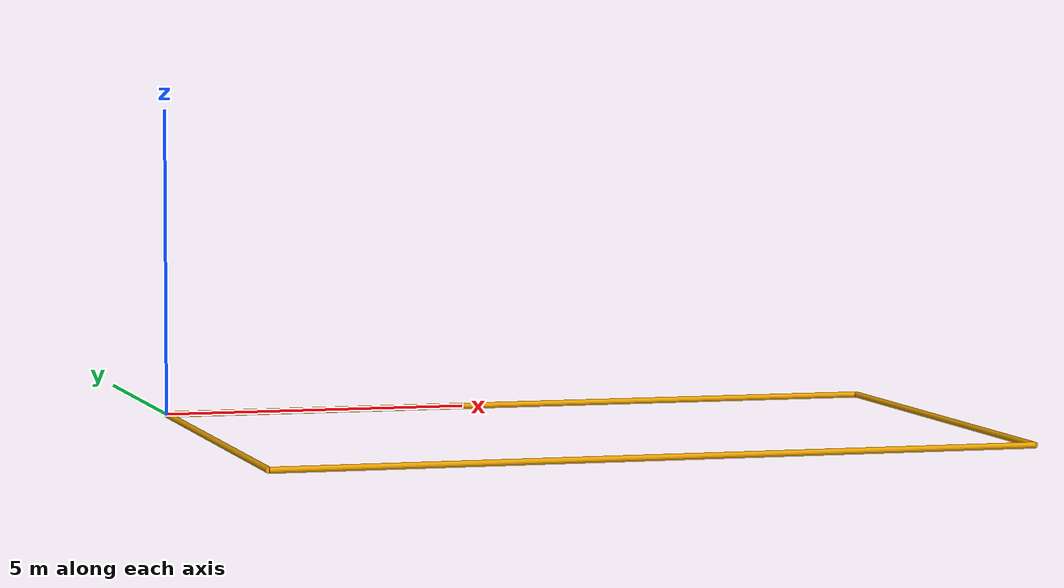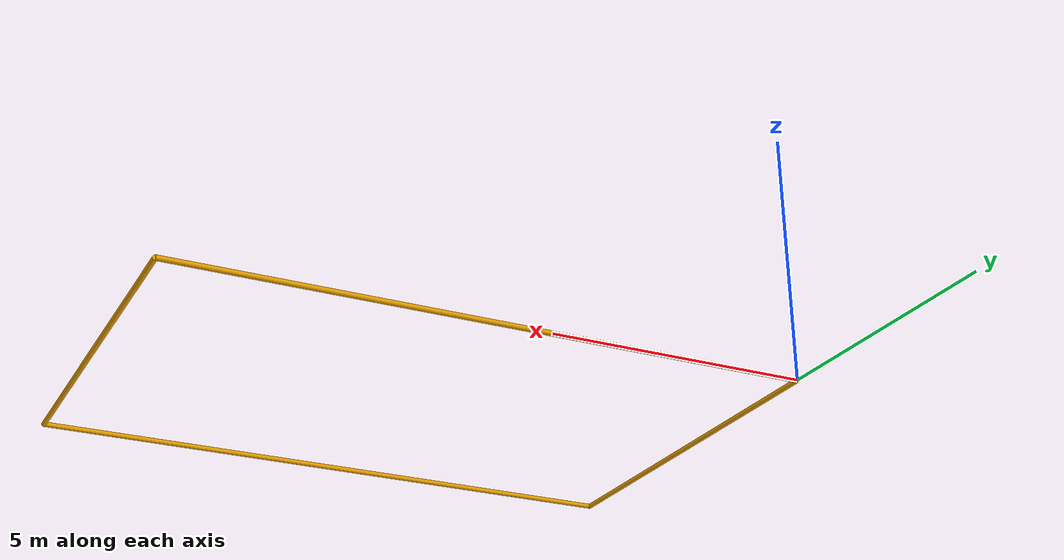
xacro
<?xml version="1.0" encoding="utf-8"?>
<!-- RoboMaster 2024 哨兵7号 导航框架 -->
<robot name="rm_2024_SENTRY_7_nav"
  xmlns:xacro="http://ros.org/wiki/xacro">
  <xacro:property name="line_width" value="0.05" />
  <link name="map" > <!-- 地图可视化描述 -->
    <visual>
      <!-- 场地上边缘 -->
      <origin xyz="6 0 0" rpy="${pi/2} 0 ${pi/2}" />
      <geometry>
        <cylinder length="12" radius="${line_width}" />
      </geometry>
    </visual>
    <visual>
      <!-- 场地下边缘 -->
      <origin xyz="6 -8 0" rpy="${pi/2} 0 ${pi/2}" />
      <geometry>
        <cylinder length="12" radius="${line_width}" />
      </geometry>
    </visual>
    <visual>
      <!-- 场地左边缘 -->
      <origin xyz="0 -4 0"  rpy="${pi/2} 0 0"  />
      <geometry>
        <cylinder length="8" radius="${line_width}" />
      </geometry>
    </visual>
    <visual>
      <!-- 场地右边缘 -->
      <origin xyz="12 -4 0" rpy="${pi/2} 0 0"  />
      <geometry>
        <cylinder length="8" radius="${line_width}" />
      </geometry>
    </visual>
    <visual>
      <!-- 场地右边缘 -->
      <origin xyz="12 -4 0" rpy="${pi/2} 0 0"  />
      <geometry>
        <cylinder length="8" radius="${line_width}" />
      </geometry>
    </visual>
  </link>
  <link name="foot_init" />
  <link name="lidar_init" />
  <link name="lidar_now" />
  <link name="robot_center" />
  <link name="livox_frame" />
  <link name="robot_foot" />

  <joint name="map_foot_init_joint" type="fixed">
    <origin xyz="0 0 0" rpy="0 0 ${48/180*pi}" />

    <parent link="map" />
    <child link="foot_init" />
  </joint>

  <joint name="foot_init_lidar_init_joint" type="fixed">
    <origin xyz="0.11 0.128 0.568" rpy="${180/180*pi} 0 0" />
    <parent link="foot_init" />
    <child link="lidar_init" />
  </joint>

  <joint name="lidar_init_lidar_now_joint" type="floating">
    <parent link="lidar_init" />
    <child link="lidar_now" />
  </joint>

  <joint name="lidar_now_gimbal_link_joint" type="fixed">
    <origin xyz="-0.11 0.128 ${0.568-0.432}" rpy="-${180/180*pi} 0 0" />
    <parent link="lidar_now" />
    <child link="robot_center" />
  </joint>

  <joint name="foot_init_joint" type="fixed">
    <origin xyz="0 0 -0.432" rpy="0 0 0" />
    <parent link="robot_center" />
    <child link="robot_foot" />
  </joint>

  <joint name="livox_joint" type="fixed">
    <origin xyz="0.00495 -0.1339 0.0142" rpy="0 ${180/180*pi} ${180/180*pi}" />
    <parent link="robot_center" />
    <child link="livox_frame" />
  </joint>

</robot>
